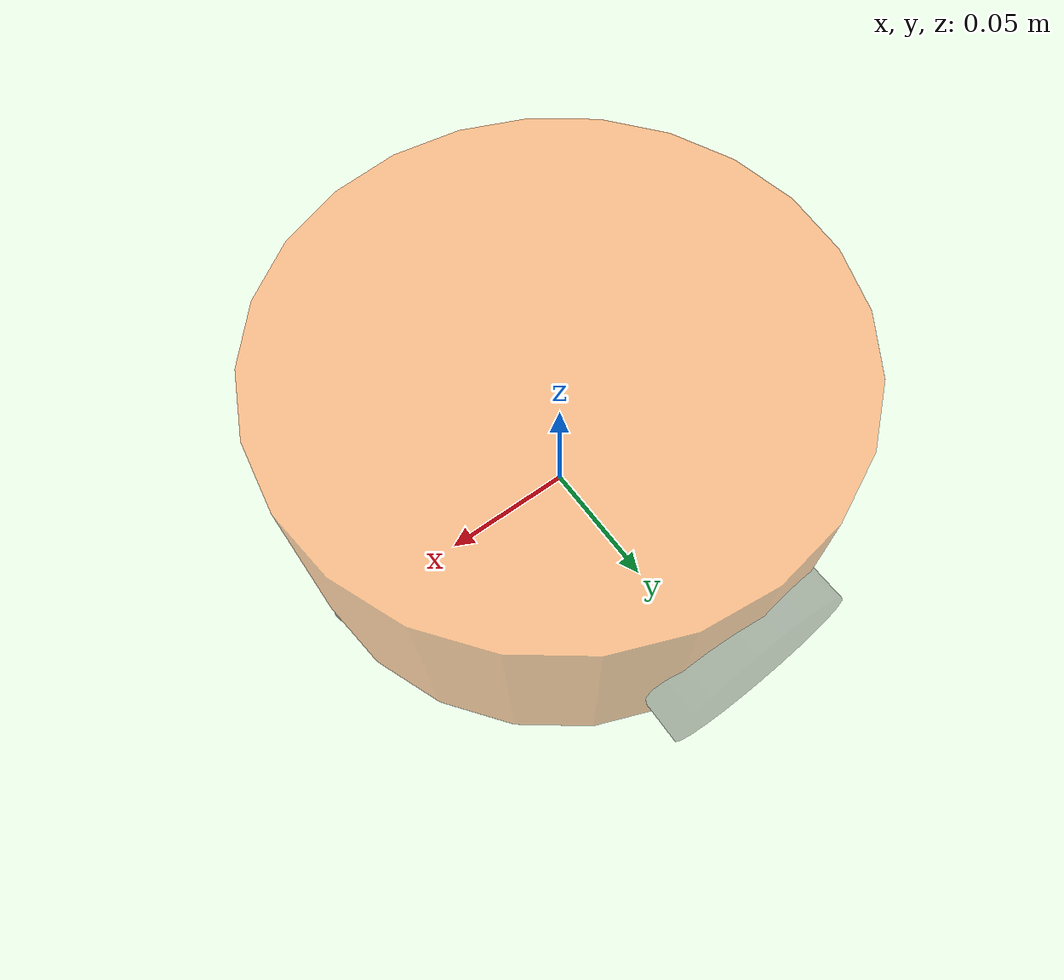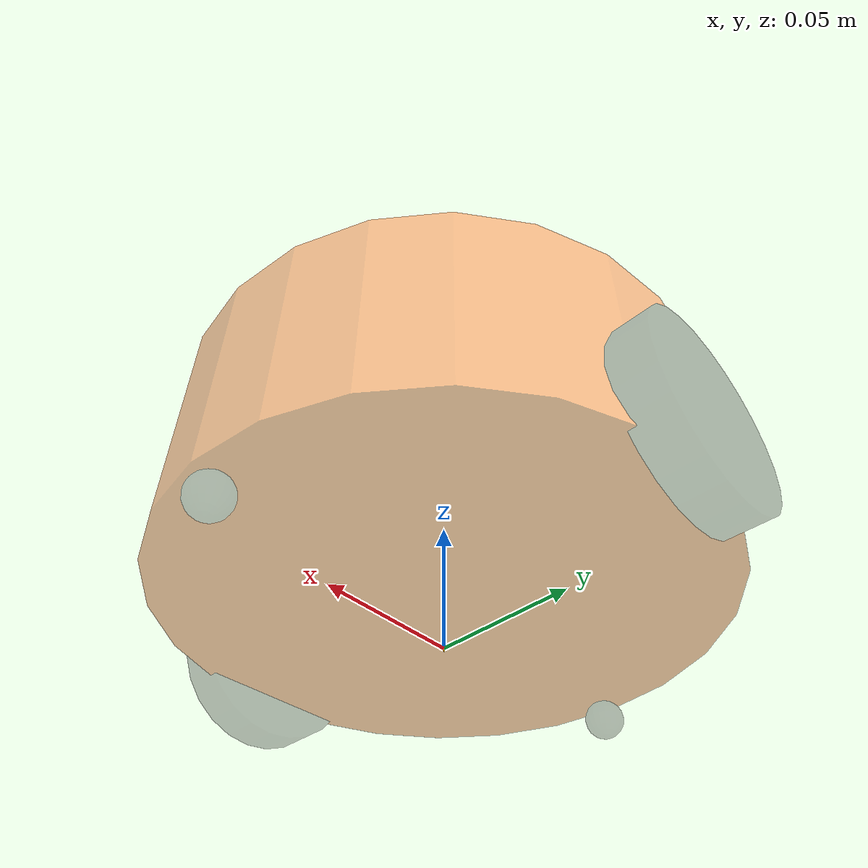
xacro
<robot name="mycar" xmlns:xacro="http://wiki.ros.org/xacro" >
    <xacro:property name="footprint_radius" value="0.001" />
    <!-- 1.·添加 base_footprint -->
    <link name="base_footprint">
        <visual>
            <geometry>
                <sphere radius="${footprint_radius}" />
            </geometry>
        </visual>
    </link>

    <!-- 2.添加底盘 -->
    <!--
        形状:圆柱
        半径:0.1m
        高度:0.08m
        离地半径:0.015m
     -->

    <xacro:property name="base_radius" value="0.1" />
    <xacro:property name="base_length" value="0.08" />
    <xacro:property name="base_mass" value="2" />
    <xacro:property name="lidi" value="0.015" />
    <xacro:property name="base_joint_z" value="${base_length/2+lidi}" />

     <!-- 2-1.link -->
    <link name="base_link">
        <visual>
            <geometry>
                <cylinder radius="${base_radius}" length="${base_length}"/>
            </geometry>
            <!-- 一般偏移量通过joint来设置，此处一般默认为0 -->
            <origin xyz="0 0 0" rpy="0 0 0" />

            <material name="baselink_color">
                <color rgba="1.0 0.5 0.2 0.5" />
            </material>
        </visual>
        <collision>
            <geometry>
                <cylinder radius="${base_radius}" length="${base_length}"/>
            </geometry>
            <!-- 一般偏移量通过joint来设置，此处一般默认为0 -->
            <origin xyz="0 0 0" rpy="0 0 0" />
        </collision>
        <!-- 设置惯性矩阵，参数包含质量、半径、高 -->
        <xacro:cylinder_inertial_matrix m="${base_mass}" r="${base_radius}" h="${base_length}" />
    </link>

    <gazebo reference="base_link">   <!--这里引用指设置哪个连杆的颜色-->
        <material>Gazebo/Yellow</material>   <!--中间开头需大写-->
    </gazebo>

    <!-- 2-2.joint -->
    <joint name="link2footprint" type="fixed" >
        <parent link="base_footprint" />
        <child link="base_link"  />
        <!-- 关节z上的设置等于车体高度/2+离地间距 -->
        <origin xyz="0 0 ${base_joint_z}" rpy="0 0 0" />

    </joint>

    <!-- 3.添加驱动轮 -->
    <!--
        形状：圆柱
        半径：0.035m
        长度：0.015m
     -->
    <!-- 3-1.link -->
    <!-- 属性 -->
    <xacro:property name="wheel_radius" value="0.035" />
    <xacro:property name="wheel_length" value="0.015" />
    <xacro:property name="wheel_mass" value="0.05" />
    <xacro:property name="PI" value="1.57" />
    <!-- 注意结果是负数 -->
    <xacro:property name="wheel_joint_z" value="${(base_length/2 +lidi-wheel_radius)*-1}" />

    <xacro:macro name="wheel_func" params="wheel_name flag">
    <link name="${wheel_name}_wheel">
        <visual>
            <geometry>
                <cylinder radius="${wheel_radius}" length="${wheel_length}"/>
            </geometry>
            <!-- 一般偏移量xyz通过joint来设置，此处一般默认为0,翻滚可通过此设置 -->
            <origin xyz="0 0 0" rpy="${PI} 0 0" />
            <material name="wheel_color">
                <color rgba="0 0 0 0.3" />
            </material>
        </visual>
        <collision>
            <geometry>
                <cylinder radius="${wheel_radius}" length="${wheel_length}"/>
            </geometry>
            <!-- 一般偏移量xyz通过joint来设置，此处一般默认为0,翻滚可通过此设置 -->
            <origin xyz="0 0 0" rpy="${PI} 0 0" />
        </collision>
        <!-- 设置惯性矩阵，圆柱体参数包含质量、半径、高 -->
        <xacro:cylinder_inertial_matrix m="${wheel_mass}" r="${wheel_radius}" h="${wheel_length}" />

    </link>
    <gazebo reference="${wheel_name}_wheel" >
        <material>Gazebo/Red</material>
    </gazebo>

    <joint name="${wheel_name}2link" type="continuous" >
        <parent link="base_link" />
        <child link="${wheel_name}_wheel"  />
        <!--
            x 无偏移
            y 车体半径
            z
         -->
        <!-- 关节z上的设置等于车体高度/2+离地间距 -->
        <origin xyz="0 ${0.1*flag} ${wheel_joint_z}" rpy="0 0 0" />
        <!-- 沿着y轴转动 -->
        <axis xyz ="0 1 0" />
    </joint>

    </xacro:macro>

    <xacro:wheel_func wheel_name="left" flag="1" />
    <xacro:wheel_func wheel_name="right" flag="-1" />

    <!-- 4.添加万相向轮 -->
    <!--
        形状:球状
        半径:0.0075m
     -->

    <xacro:property name="small_wheel_radius" value="0.0075" />
    <xacro:property name="small_wheel_mass" value="0.01" />
    <!-- z的偏移量=车体高度/2+离地间距-万向轮半径 -->
    <xacro:property name="small_joint_z" value="${(base_length/2+lidi-small_wheel_radius)*-1}" />

    <xacro:macro name="small_wheel_func" params="small_wheel_name flag">
     <!-- 4-1.link -->
    <link name="${small_wheel_name}_wheel">
        <visual>
            <geometry>
                <sphere radius="${small_wheel_radius}" />
            </geometry>
            <!-- 一般偏移量xyz通过joint来设置，此处一般默认为0,翻滚可通过此设置 -->
            <origin xyz="0 0 0" rpy="0 0 0" />
            <material name="wheel_color">
                <color rgba="0 0 0 0.3" />
            </material>
        </visual>
        <collision >
            <geometry>
                <sphere radius="${small_wheel_radius}" />
            </geometry>
            <!-- 一般偏移量xyz通过joint来设置，此处一般默认为0,翻滚可通过此设置 -->
            <origin xyz="0 0 0" rpy="0 0 0" />
        </collision>
        <xacro:sphere_inertial_matrix m="${small_wheel_mass}" r="${small_wheel_radius}" />
    </link>
    <gazebo reference="${small_wheel_name}_wheel">
        <material>Gazebo/Red</material>
    </gazebo>

    <!-- 4-2. joint -->
    <joint name="${small_wheel_name}2link" type="continuous" >
        <parent link="base_link" />
        <child link="${small_wheel_name}_wheel"  />
        <!--
            x 无偏移
            y 车体半径
            z
         -->
        <!-- 关节z上的设置等于车体高度/2+离地间距 -->
        <origin xyz="${0.0925*flag} 0 ${small_joint_z}" rpy="0 0 0" />
        <!-- 沿着y轴转动 -->
        <axis xyz ="0 1 0" />
    </joint>

    </xacro:macro >

    <xacro:small_wheel_func small_wheel_name="front" flag="1" />
    <xacro:small_wheel_func small_wheel_name="back" flag="-1" />

</robot>
